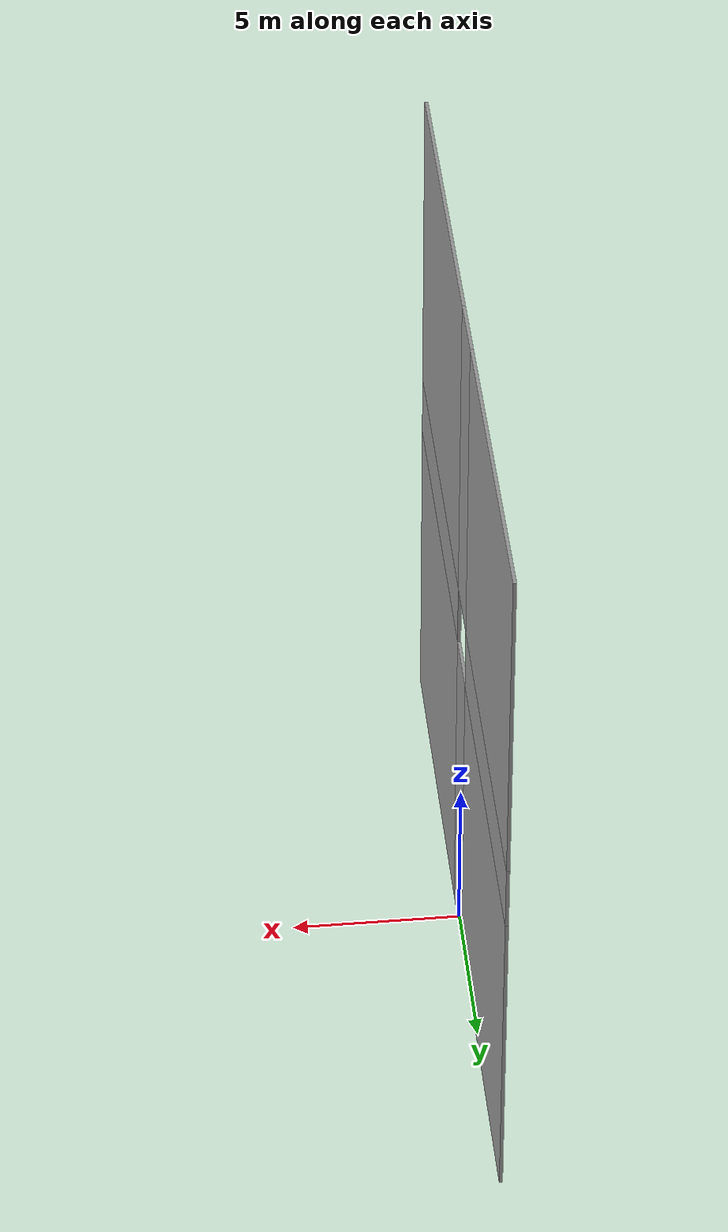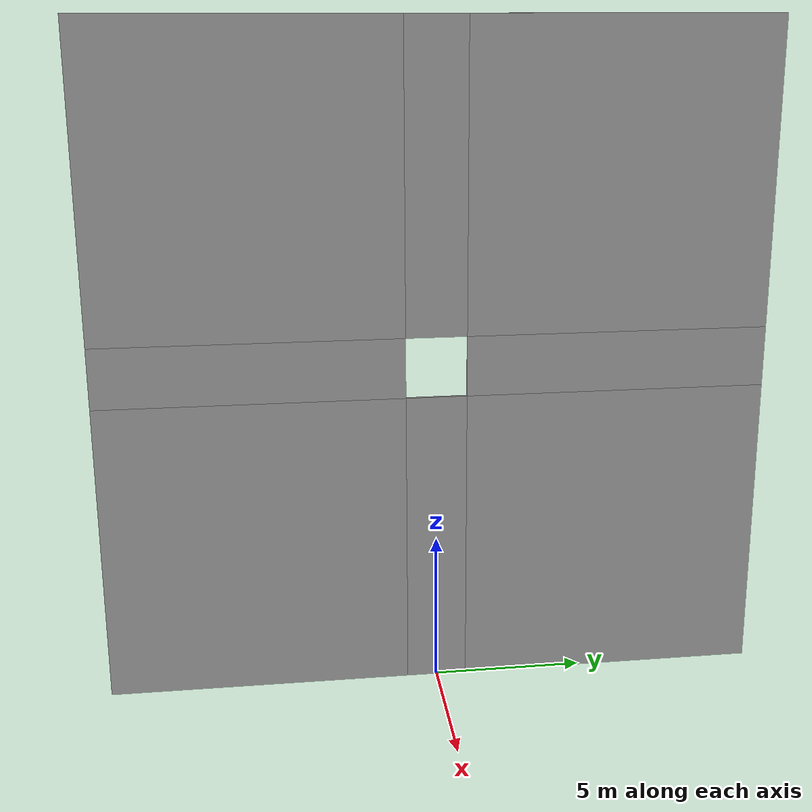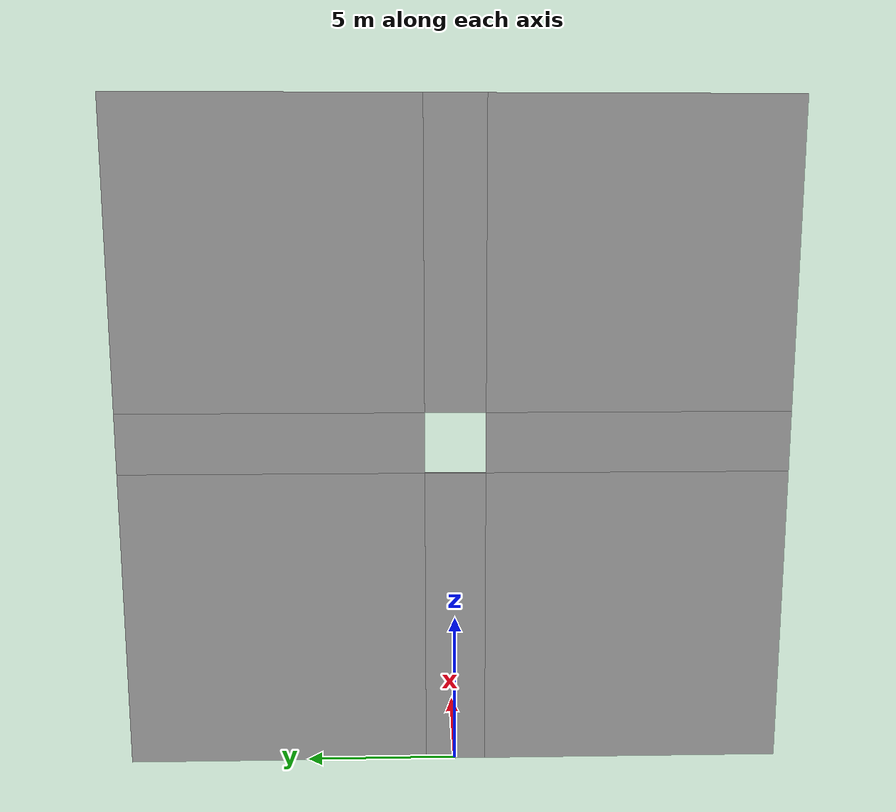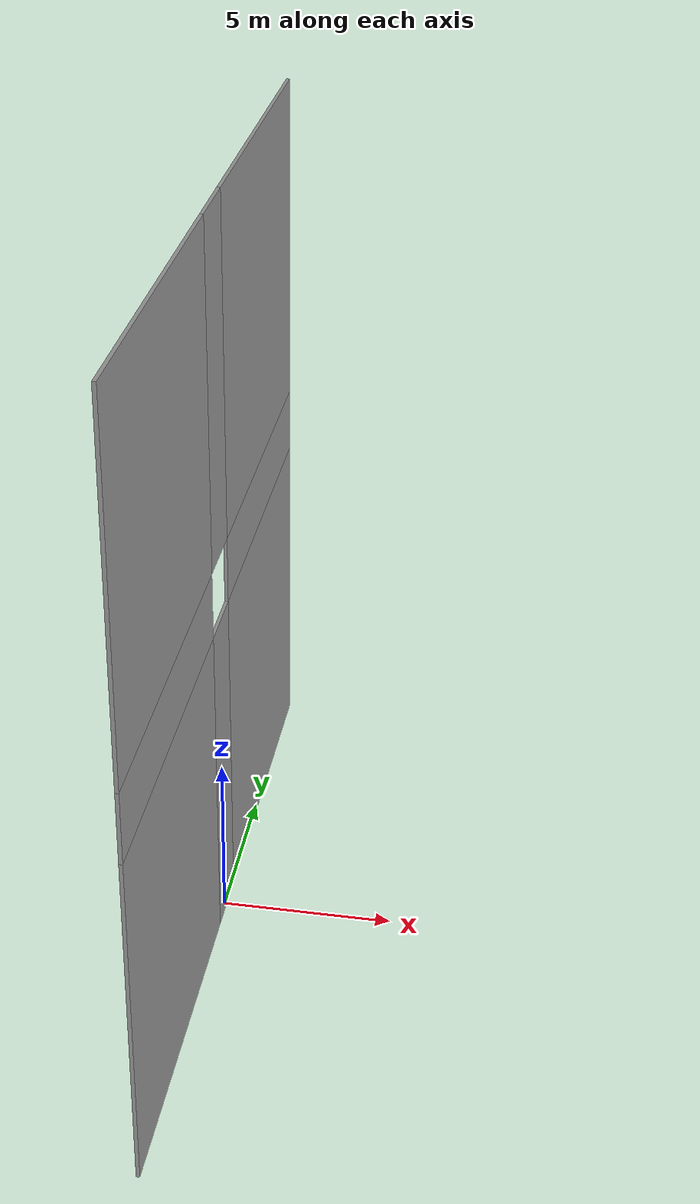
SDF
<?xml version='1.0'?>
<sdf version='1.6'>
  <model name='wall'>
    <link name='link_2'>
      <inertial>
        <mass>7.82778</mass>
        <inertia>
          <ixx>117.116</ixx>
          <ixy>0</ixy>
          <ixz>0</ixz>
          <iyy>86.2644</iyy>
          <iyz>0</iyz>
          <izz>30.8645</izz>
        </inertia>
        <pose frame=''>0 0 0 0 -0 0</pose>
      </inertial>
      <pose frame=''>0 -6 17 0 -0 0</pose>
      <gravity>1</gravity>
      <self_collide>0</self_collide>
      <kinematic>0</kinematic>
      <enable_wind>0</enable_wind>
      <visual name='visual'>
        <pose frame=''>0 0 0 0 -0 0</pose>
        <geometry>
          <box>
            <size>0.1 10 10</size>
          </box>
        </geometry>
        <material>
          <lighting>1</lighting>
          <script>
            <uri>file://media/materials/scripts/gazebo.material</uri>
            <name>Gazebo/Grey</name>
          </script>
          <shader type='pixel'>
            <normal_map>__default__</normal_map>
          </shader>
          <ambient>0.3 0.3 0.3 1</ambient>
          <diffuse>0.7 0.7 0.7 1</diffuse>
          <specular>0.3 0.3 0.3 1</specular>
          <emissive>0.1 0.1 0.1 1</emissive>
        </material>
        <transparency>0</transparency>
        <cast_shadows>1</cast_shadows>
      </visual>
      <collision name='collision'>
        <laser_retro>0</laser_retro>
        <max_contacts>10</max_contacts>
        <pose frame=''>0 0 0 0 -0 0</pose>
        <geometry>
          <box>
            <size>0.1 10 10</size>
          </box>
        </geometry>
        <surface>
          <friction>
            <ode>
              <mu>1</mu>
              <mu2>1</mu2>
              <fdir1>0 0 0</fdir1>
              <slip1>0</slip1>
              <slip2>0</slip2>
            </ode>
            <torsional>
              <coefficient>1</coefficient>
              <patch_radius>0</patch_radius>
              <surface_radius>0</surface_radius>
              <use_patch_radius>1</use_patch_radius>
              <ode>
                <slip>0</slip>
              </ode>
            </torsional>
          </friction>
          <bounce>
            <restitution_coefficient>0</restitution_coefficient>
            <threshold>1e+06</threshold>
          </bounce>
          <contact>
            <collide_without_contact>0</collide_without_contact>
            <collide_without_contact_bitmask>1</collide_without_contact_bitmask>
            <collide_bitmask>1</collide_bitmask>
            <ode>
              <soft_cfm>0</soft_cfm>
              <soft_erp>0.2</soft_erp>
              <kp>1e+13</kp>
              <kd>1</kd>
              <max_vel>0.01</max_vel>
              <min_depth>0</min_depth>
            </ode>
            <bullet>
              <split_impulse>1</split_impulse>
              <split_impulse_penetration_threshold>-0.01</split_impulse_penetration_threshold>
              <soft_cfm>0</soft_cfm>
              <soft_erp>0.2</soft_erp>
              <kp>1e+13</kp>
              <kd>1</kd>
            </bullet>
          </contact>
        </surface>
      </collision>
    </link>
    <link name='link_2_clone_0'>
      <inertial>
        <mass>7.82778</mass>
        <inertia>
          <ixx>117.116</ixx>
          <ixy>0</ixy>
          <ixz>0</ixz>
          <iyy>86.2644</iyy>
          <iyz>0</iyz>
          <izz>30.8645</izz>
        </inertia>
        <pose frame=''>0 -6 6 0 -0 0</pose>
      </inertial>
      <pose frame=''>0 6 17 0 -0 0</pose>
      <gravity>1</gravity>
      <self_collide>0</self_collide>
      <kinematic>0</kinematic>
      <enable_wind>0</enable_wind>
      <visual name='visual'>
        <pose frame=''>0 0 0 0 -0 0</pose>
        <geometry>
          <box>
            <size>0.1 10 10</size>
          </box>
        </geometry>
        <material>
          <lighting>1</lighting>
          <script>
            <uri>file://media/materials/scripts/gazebo.material</uri>
            <name>Gazebo/Grey</name>
          </script>
          <shader type='pixel'>
            <normal_map>__default__</normal_map>
          </shader>
          <ambient>0.3 0.3 0.3 1</ambient>
          <diffuse>0.7 0.7 0.7 1</diffuse>
          <specular>0.3 0.3 0.3 1</specular>
          <emissive>0.1 0.1 0.1 1</emissive>
        </material>
        <transparency>0</transparency>
        <cast_shadows>1</cast_shadows>
      </visual>
      <collision name='collision'>
        <laser_retro>0</laser_retro>
        <max_contacts>10</max_contacts>
        <pose frame=''>0 0 0 0 -0 0</pose>
        <geometry>
          <box>
            <size>0.1 10 10</size>
          </box>
        </geometry>
        <surface>
          <friction>
            <ode>
              <mu>1</mu>
              <mu2>1</mu2>
              <fdir1>0 0 0</fdir1>
              <slip1>0</slip1>
              <slip2>0</slip2>
            </ode>
            <torsional>
              <coefficient>1</coefficient>
              <patch_radius>0</patch_radius>
              <surface_radius>0</surface_radius>
              <use_patch_radius>1</use_patch_radius>
              <ode>
                <slip>0</slip>
              </ode>
            </torsional>
          </friction>
          <bounce>
            <restitution_coefficient>0</restitution_coefficient>
            <threshold>1e+06</threshold>
          </bounce>
          <contact>
            <collide_without_contact>0</collide_without_contact>
            <collide_without_contact_bitmask>1</collide_without_contact_bitmask>
            <collide_bitmask>1</collide_bitmask>
            <ode>
              <soft_cfm>0</soft_cfm>
              <soft_erp>0.2</soft_erp>
              <kp>1e+13</kp>
              <kd>1</kd>
              <max_vel>0.01</max_vel>
              <min_depth>0</min_depth>
            </ode>
            <bullet>
              <split_impulse>1</split_impulse>
              <split_impulse_penetration_threshold>-0.01</split_impulse_penetration_threshold>
              <soft_cfm>0</soft_cfm>
              <soft_erp>0.2</soft_erp>
              <kp>1e+13</kp>
              <kd>1</kd>
            </bullet>
          </contact>
        </surface>
      </collision>
    </link>
    <link name='link_2_clone_1'>
      <inertial>
        <mass>7.82778</mass>
        <inertia>
          <ixx>117.116</ixx>
          <ixy>0</ixy>
          <ixz>0</ixz>
          <iyy>86.2644</iyy>
          <iyz>0</iyz>
          <izz>30.8645</izz>
        </inertia>
        <pose frame=''>0 0 0 0 -0 0</pose>
      </inertial>
      <pose frame=''>0 -6 5 0 -0 0</pose>
      <gravity>1</gravity>
      <self_collide>0</self_collide>
      <kinematic>0</kinematic>
      <enable_wind>0</enable_wind>
      <visual name='visual'>
        <pose frame=''>0 0 0 0 -0 0</pose>
        <geometry>
          <box>
            <size>0.1 10 10</size>
          </box>
        </geometry>
        <material>
          <lighting>1</lighting>
          <script>
            <uri>file://media/materials/scripts/gazebo.material</uri>
            <name>Gazebo/Grey</name>
          </script>
          <shader type='pixel'>
            <normal_map>__default__</normal_map>
          </shader>
          <ambient>0.3 0.3 0.3 1</ambient>
          <diffuse>0.7 0.7 0.7 1</diffuse>
          <specular>0.3 0.3 0.3 1</specular>
          <emissive>0.1 0.1 0.1 1</emissive>
        </material>
        <transparency>0</transparency>
        <cast_shadows>1</cast_shadows>
      </visual>
      <collision name='collision'>
        <laser_retro>0</laser_retro>
        <max_contacts>10</max_contacts>
        <pose frame=''>0 0 0 0 -0 0</pose>
        <geometry>
          <box>
            <size>0.1 10 10</size>
          </box>
        </geometry>
        <surface>
          <friction>
            <ode>
              <mu>1</mu>
              <mu2>1</mu2>
              <fdir1>0 0 0</fdir1>
              <slip1>0</slip1>
              <slip2>0</slip2>
            </ode>
            <torsional>
              <coefficient>1</coefficient>
              <patch_radius>0</patch_radius>
              <surface_radius>0</surface_radius>
              <use_patch_radius>1</use_patch_radius>
              <ode>
                <slip>0</slip>
              </ode>
            </torsional>
          </friction>
          <bounce>
            <restitution_coefficient>0</restitution_coefficient>
            <threshold>1e+06</threshold>
          </bounce>
          <contact>
            <collide_without_contact>0</collide_without_contact>
            <collide_without_contact_bitmask>1</collide_without_contact_bitmask>
            <collide_bitmask>1</collide_bitmask>
            <ode>
              <soft_cfm>0</soft_cfm>
              <soft_erp>0.2</soft_erp>
              <kp>1e+13</kp>
              <kd>1</kd>
              <max_vel>0.01</max_vel>
              <min_depth>0</min_depth>
            </ode>
            <bullet>
              <split_impulse>1</split_impulse>
              <split_impulse_penetration_threshold>-0.01</split_impulse_penetration_threshold>
              <soft_cfm>0</soft_cfm>
              <soft_erp>0.2</soft_erp>
              <kp>1e+13</kp>
              <kd>1</kd>
            </bullet>
          </contact>
        </surface>
      </collision>
    </link>
    <link name='link_2_clone_1_clone'>
      <inertial>
        <mass>7.82778</mass>
        <inertia>
          <ixx>117.116</ixx>
          <ixy>0</ixy>
          <ixz>0</ixz>
          <iyy>86.2644</iyy>
          <iyz>0</iyz>
          <izz>30.8645</izz>
        </inertia>
        <pose frame=''>0 0 0 0 -0 0</pose>
      </inertial>
      <pose frame=''>0 -6 11 0 -0 0</pose>
      <gravity>1</gravity>
      <self_collide>0</self_collide>
      <kinematic>0</kinematic>
      <enable_wind>0</enable_wind>
      <visual name='visual'>
        <pose frame=''>0 0 0 0 -0 0</pose>
        <geometry>
          <box>
            <size>0.1 10 2</size>
          </box>
        </geometry>
        <material>
          <lighting>1</lighting>
          <script>
            <uri>file://media/materials/scripts/gazebo.material</uri>
            <name>Gazebo/Grey</name>
          </script>
          <shader type='pixel'>
            <normal_map>__default__</normal_map>
          </shader>
          <ambient>0.3 0.3 0.3 1</ambient>
          <diffuse>0.7 0.7 0.7 1</diffuse>
          <specular>0.3 0.3 0.3 1</specular>
          <emissive>0.1 0.1 0.1 1</emissive>
        </material>
        <transparency>0</transparency>
        <cast_shadows>1</cast_shadows>
      </visual>
      <collision name='collision'>
        <laser_retro>0</laser_retro>
        <max_contacts>10</max_contacts>
        <pose frame=''>0 0 0 0 -0 0</pose>
        <geometry>
          <box>
            <size>0.1 10 2</size>
          </box>
        </geometry>
        <surface>
          <friction>
            <ode>
              <mu>1</mu>
              <mu2>1</mu2>
              <fdir1>0 0 0</fdir1>
              <slip1>0</slip1>
              <slip2>0</slip2>
            </ode>
            <torsional>
              <coefficient>1</coefficient>
              <patch_radius>0</patch_radius>
              <surface_radius>0</surface_radius>
              <use_patch_radius>1</use_patch_radius>
              <ode>
                <slip>0</slip>
              </ode>
            </torsional>
          </friction>
          <bounce>
            <restitution_coefficient>0</restitution_coefficient>
            <threshold>1e+06</threshold>
          </bounce>
          <contact>
            <collide_without_contact>0</collide_without_contact>
            <collide_without_contact_bitmask>1</collide_without_contact_bitmask>
            <collide_bitmask>1</collide_bitmask>
            <ode>
              <soft_cfm>0</soft_cfm>
              <soft_erp>0.2</soft_erp>
              <kp>1e+13</kp>
              <kd>1</kd>
              <max_vel>0.01</max_vel>
              <min_depth>0</min_depth>
            </ode>
            <bullet>
              <split_impulse>1</split_impulse>
              <split_impulse_penetration_threshold>-0.01</split_impulse_penetration_threshold>
              <soft_cfm>0</soft_cfm>
              <soft_erp>0.2</soft_erp>
              <kp>1e+13</kp>
              <kd>1</kd>
            </bullet>
          </contact>
        </surface>
      </collision>
    </link>
    <link name='link_2_clone_1_clone_clone'>
      <inertial>
        <mass>7.82778</mass>
        <inertia>
          <ixx>117.116</ixx>
          <ixy>0</ixy>
          <ixz>0</ixz>
          <iyy>86.2644</iyy>
          <iyz>0</iyz>
          <izz>30.8645</izz>
        </inertia>
        <pose frame=''>0 0 0 0 -0 0</pose>
      </inertial>
      <pose frame=''>0 6 11 0 -0 0</pose>
      <gravity>1</gravity>
      <self_collide>0</self_collide>
      <kinematic>0</kinematic>
      <enable_wind>0</enable_wind>
      <visual name='visual'>
        <pose frame=''>0 0 0 0 -0 0</pose>
        <geometry>
          <box>
            <size>0.1 10 2</size>
          </box>
        </geometry>
        <material>
          <lighting>1</lighting>
          <script>
            <uri>file://media/materials/scripts/gazebo.material</uri>
            <name>Gazebo/Grey</name>
          </script>
          <shader type='pixel'>
            <normal_map>__default__</normal_map>
          </shader>
          <ambient>0.3 0.3 0.3 1</ambient>
          <diffuse>0.7 0.7 0.7 1</diffuse>
          <specular>0.3 0.3 0.3 1</specular>
          <emissive>0.1 0.1 0.1 1</emissive>
        </material>
        <transparency>0</transparency>
        <cast_shadows>1</cast_shadows>
      </visual>
      <collision name='collision'>
        <laser_retro>0</laser_retro>
        <max_contacts>10</max_contacts>
        <pose frame=''>0 0 0 0 -0 0</pose>
        <geometry>
          <box>
            <size>0.1 10 2</size>
          </box>
        </geometry>
        <surface>
          <friction>
            <ode>
              <mu>1</mu>
              <mu2>1</mu2>
              <fdir1>0 0 0</fdir1>
              <slip1>0</slip1>
              <slip2>0</slip2>
            </ode>
            <torsional>
              <coefficient>1</coefficient>
              <patch_radius>0</patch_radius>
              <surface_radius>0</surface_radius>
              <use_patch_radius>1</use_patch_radius>
              <ode>
                <slip>0</slip>
              </ode>
            </torsional>
          </friction>
          <bounce>
            <restitution_coefficient>0</restitution_coefficient>
            <threshold>1e+06</threshold>
          </bounce>
          <contact>
            <collide_without_contact>0</collide_without_contact>
            <collide_without_contact_bitmask>1</collide_without_contact_bitmask>
            <collide_bitmask>1</collide_bitmask>
            <ode>
              <soft_cfm>0</soft_cfm>
              <soft_erp>0.2</soft_erp>
              <kp>1e+13</kp>
              <kd>1</kd>
              <max_vel>0.01</max_vel>
              <min_depth>0</min_depth>
            </ode>
            <bullet>
              <split_impulse>1</split_impulse>
              <split_impulse_penetration_threshold>-0.01</split_impulse_penetration_threshold>
              <soft_cfm>0</soft_cfm>
              <soft_erp>0.2</soft_erp>
              <kp>1e+13</kp>
              <kd>1</kd>
            </bullet>
          </contact>
        </surface>
      </collision>
    </link>
    <link name='link_2_clone_1_clone_clone_clone_0'>
      <inertial>
        <mass>7.82778</mass>
        <inertia>
          <ixx>117.116</ixx>
          <ixy>0</ixy>
          <ixz>0</ixz>
          <iyy>86.2644</iyy>
          <iyz>0</iyz>
          <izz>30.8645</izz>
        </inertia>
        <pose frame=''>0 0 0 0 -0 0</pose>
      </inertial>
      <pose frame=''>0 0 5 0 -0 0</pose>
      <gravity>1</gravity>
      <self_collide>0</self_collide>
      <kinematic>0</kinematic>
      <enable_wind>0</enable_wind>
      <visual name='visual'>
        <pose frame=''>0 0 0 0 -0 0</pose>
        <geometry>
          <box>
            <size>0.1 2 10</size>
          </box>
        </geometry>
        <material>
          <lighting>1</lighting>
          <script>
            <uri>file://media/materials/scripts/gazebo.material</uri>
            <name>Gazebo/Grey</name>
          </script>
          <shader type='pixel'>
            <normal_map>__default__</normal_map>
          </shader>
          <ambient>0.3 0.3 0.3 1</ambient>
          <diffuse>0.7 0.7 0.7 1</diffuse>
          <specular>0.3 0.3 0.3 1</specular>
          <emissive>0.1 0.1 0.1 1</emissive>
        </material>
        <transparency>0</transparency>
        <cast_shadows>1</cast_shadows>
      </visual>
      <collision name='collision'>
        <laser_retro>0</laser_retro>
        <max_contacts>10</max_contacts>
        <pose frame=''>0 0 0 0 -0 0</pose>
        <geometry>
          <box>
            <size>0.1 2 10</size>
          </box>
        </geometry>
        <surface>
          <friction>
            <ode>
              <mu>1</mu>
              <mu2>1</mu2>
              <fdir1>0 0 0</fdir1>
              <slip1>0</slip1>
              <slip2>0</slip2>
            </ode>
            <torsional>
              <coefficient>1</coefficient>
              <patch_radius>0</patch_radius>
              <surface_radius>0</surface_radius>
              <use_patch_radius>1</use_patch_radius>
              <ode>
                <slip>0</slip>
              </ode>
            </torsional>
          </friction>
          <bounce>
            <restitution_coefficient>0</restitution_coefficient>
            <threshold>1e+06</threshold>
          </bounce>
          <contact>
            <collide_without_contact>0</collide_without_contact>
            <collide_without_contact_bitmask>1</collide_without_contact_bitmask>
            <collide_bitmask>1</collide_bitmask>
            <ode>
              <soft_cfm>0</soft_cfm>
              <soft_erp>0.2</soft_erp>
              <kp>1e+13</kp>
              <kd>1</kd>
              <max_vel>0.01</max_vel>
              <min_depth>0</min_depth>
            </ode>
            <bullet>
              <split_impulse>1</split_impulse>
              <split_impulse_penetration_threshold>-0.01</split_impulse_penetration_threshold>
              <soft_cfm>0</soft_cfm>
              <soft_erp>0.2</soft_erp>
              <kp>1e+13</kp>
              <kd>1</kd>
            </bullet>
          </contact>
        </surface>
      </collision>
    </link>
    <link name='link_2_clone_1_clone_clone_clone_0_clone'>
      <inertial>
        <mass>7.82778</mass>
        <inertia>
          <ixx>117.116</ixx>
          <ixy>0</ixy>
          <ixz>0</ixz>
          <iyy>86.2644</iyy>
          <iyz>0</iyz>
          <izz>30.8645</izz>
        </inertia>
        <pose frame=''>0 0 0 0 -0 0</pose>
      </inertial>
      <pose frame=''>0 0 17 0 -0 0</pose>
      <gravity>1</gravity>
      <self_collide>0</self_collide>
      <kinematic>0</kinematic>
      <enable_wind>0</enable_wind>
      <visual name='visual'>
        <pose frame=''>0 0 0 0 -0 0</pose>
        <geometry>
          <box>
            <size>0.1 2 10</size>
          </box>
        </geometry>
        <material>
          <lighting>1</lighting>
          <script>
            <uri>file://media/materials/scripts/gazebo.material</uri>
            <name>Gazebo/Grey</name>
          </script>
          <shader type='pixel'>
            <normal_map>__default__</normal_map>
          </shader>
          <ambient>0.3 0.3 0.3 1</ambient>
          <diffuse>0.7 0.7 0.7 1</diffuse>
          <specular>0.3 0.3 0.3 1</specular>
          <emissive>0.1 0.1 0.1 1</emissive>
        </material>
        <transparency>0</transparency>
        <cast_shadows>1</cast_shadows>
      </visual>
      <collision name='collision'>
        <laser_retro>0</laser_retro>
        <max_contacts>10</max_contacts>
        <pose frame=''>0 0 0 0 -0 0</pose>
        <geometry>
          <box>
            <size>0.1 2 10</size>
          </box>
        </geometry>
        <surface>
          <friction>
            <ode>
              <mu>1</mu>
              <mu2>1</mu2>
              <fdir1>0 0 0</fdir1>
              <slip1>0</slip1>
              <slip2>0</slip2>
            </ode>
            <torsional>
              <coefficient>1</coefficient>
              <patch_radius>0</patch_radius>
              <surface_radius>0</surface_radius>
              <use_patch_radius>1</use_patch_radius>
              <ode>
                <slip>0</slip>
              </ode>
            </torsional>
          </friction>
          <bounce>
            <restitution_coefficient>0</restitution_coefficient>
            <threshold>1e+06</threshold>
          </bounce>
          <contact>
            <collide_without_contact>0</collide_without_contact>
            <collide_without_contact_bitmask>1</collide_without_contact_bitmask>
            <collide_bitmask>1</collide_bitmask>
            <ode>
              <soft_cfm>0</soft_cfm>
              <soft_erp>0.2</soft_erp>
              <kp>1e+13</kp>
              <kd>1</kd>
              <max_vel>0.01</max_vel>
              <min_depth>0</min_depth>
            </ode>
            <bullet>
              <split_impulse>1</split_impulse>
              <split_impulse_penetration_threshold>-0.01</split_impulse_penetration_threshold>
              <soft_cfm>0</soft_cfm>
              <soft_erp>0.2</soft_erp>
              <kp>1e+13</kp>
              <kd>1</kd>
            </bullet>
          </contact>
        </surface>
      </collision>
    </link>
    <link name='link_2_clone_2'>
      <inertial>
        <mass>7.82778</mass>
        <inertia>
          <ixx>117.116</ixx>
          <ixy>0</ixy>
          <ixz>0</ixz>
          <iyy>86.2644</iyy>
          <iyz>0</iyz>
          <izz>30.8645</izz>
        </inertia>
        <pose frame=''>0 0 0 0 -0 0</pose>
      </inertial>
      <pose frame=''>0 6 5 0 -0 0</pose>
      <gravity>1</gravity>
      <self_collide>0</self_collide>
      <kinematic>0</kinematic>
      <enable_wind>0</enable_wind>
      <visual name='visual'>
        <pose frame=''>0 0 0 0 -0 0</pose>
        <geometry>
          <box>
            <size>0.1 10 10</size>
          </box>
        </geometry>
        <material>
          <lighting>1</lighting>
          <script>
            <uri>file://media/materials/scripts/gazebo.material</uri>
            <name>Gazebo/Grey</name>
          </script>
          <shader type='pixel'>
            <normal_map>__default__</normal_map>
          </shader>
          <ambient>0.3 0.3 0.3 1</ambient>
          <diffuse>0.7 0.7 0.7 1</diffuse>
          <specular>0.3 0.3 0.3 1</specular>
          <emissive>0.1 0.1 0.1 1</emissive>
        </material>
        <transparency>0</transparency>
        <cast_shadows>1</cast_shadows>
      </visual>
      <collision name='collision'>
        <laser_retro>0</laser_retro>
        <max_contacts>10</max_contacts>
        <pose frame=''>0 0 0 0 -0 0</pose>
        <geometry>
          <box>
            <size>0.1 10 10</size>
          </box>
        </geometry>
        <surface>
          <friction>
            <ode>
              <mu>1</mu>
              <mu2>1</mu2>
              <fdir1>0 0 0</fdir1>
              <slip1>0</slip1>
              <slip2>0</slip2>
            </ode>
            <torsional>
              <coefficient>1</coefficient>
              <patch_radius>0</patch_radius>
              <surface_radius>0</surface_radius>
              <use_patch_radius>1</use_patch_radius>
              <ode>
                <slip>0</slip>
              </ode>
            </torsional>
          </friction>
          <bounce>
            <restitution_coefficient>0</restitution_coefficient>
            <threshold>1e+06</threshold>
          </bounce>
          <contact>
            <collide_without_contact>0</collide_without_contact>
            <collide_without_contact_bitmask>1</collide_without_contact_bitmask>
            <collide_bitmask>1</collide_bitmask>
            <ode>
              <soft_cfm>0</soft_cfm>
              <soft_erp>0.2</soft_erp>
              <kp>1e+13</kp>
              <kd>1</kd>
              <max_vel>0.01</max_vel>
              <min_depth>0</min_depth>
            </ode>
            <bullet>
              <split_impulse>1</split_impulse>
              <split_impulse_penetration_threshold>-0.01</split_impulse_penetration_threshold>
              <soft_cfm>0</soft_cfm>
              <soft_erp>0.2</soft_erp>
              <kp>1e+13</kp>
              <kd>1</kd>
            </bullet>
          </contact>
        </surface>
      </collision>
    </link>
    <static>1</static>
    <allow_auto_disable>1</allow_auto_disable>
  </model>
</sdf>
